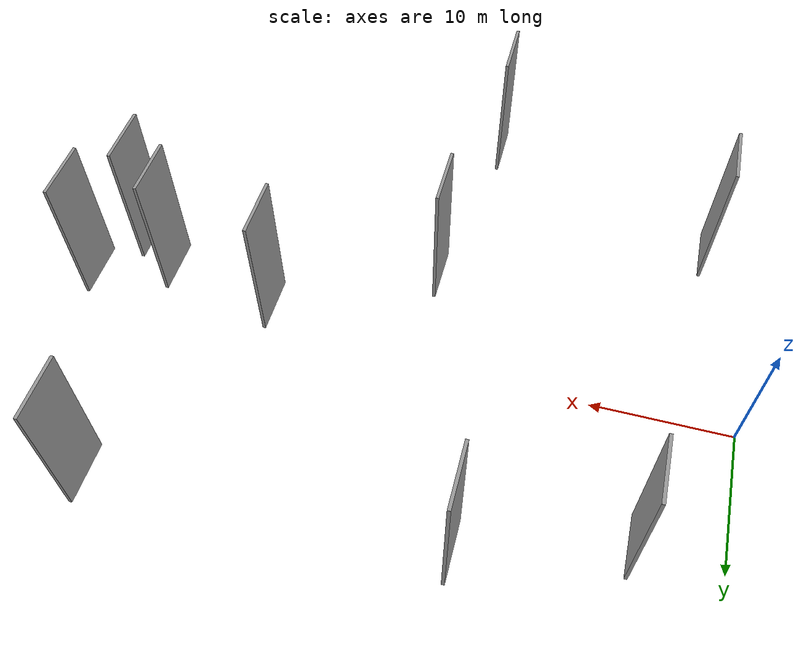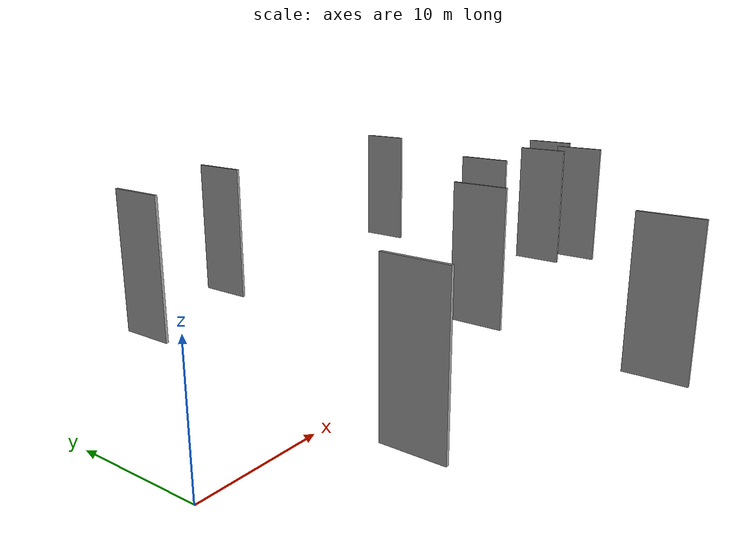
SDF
<sdf version="1.6">
 <world name="default">
  <scene>
   <sky><clouds><speed>12</speed></clouds></sky>
   <ambient>0.4 0.4 0.4 1</ambient>
   <background>0.7 0.7 0.7 1</background>
   <shadows>1</shadows>
  </scene>
  <gravity>0 0 -9.8066</gravity>
  <magnetic_field>6e-06 2.3e-05 -4.2e-05</magnetic_field>
  <physics default="0" name="default_physics" type="ode">
   <ode>
    <solver>
     <type>quick</type>
     <iters>10</iters>
     <sor>1.0</sor>
     <use_dynamic_moi_rescaling>0</use_dynamic_moi_rescaling>
    </solver>
    <constraints>
     <cfm>0</cfm>
     <erp>0.2</erp>
     <contact_max_correcting_vel>100</contact_max_correcting_vel>
     <contact_surface_layer>0.001</contact_surface_layer>
    </constraints>
   </ode>
   <max_step_size>0.004</max_step_size>
   <real_time_factor>1</real_time_factor>
   <real_time_update_rate>250</real_time_update_rate>
  </physics>
  <light name="sun" type="directional">
   <pose>0 0 10 0 0 0</pose>
   <diffuse>0.8 0.8 0.8 1</diffuse>
   <specular>0.2 0.2 0.2 1</specular>
   <attenuation>
    <range>1000</range>
    <constant>0.9</constant>
    <linear>0.01</linear>
    <quadratic>0.001</quadratic>
   </attenuation>
   <direction>-0.5 0.1 -0.9</direction>
  </light>
  <model name="grey_wall_1">
   <static>1</static>
   <pose>45.4345 0.9209 5.0 0.000000 0.000000 1.570796</pose>
   <link name="link">
    <pose>0 0 5.00 0 0 0</pose>
    <collision name="collision"><geometry><box><size>4.00 0.2 10.00</size></box></geometry></collision>
    <visual name="visual">
     <cast_shadows>0</cast_shadows>
     <geometry><box><size>4.00 0.2 10.00</size></box></geometry>
     <material>
      <script>
       <uri>model://grey_wall/materials/scripts</uri>
       <uri>model://grey_wall/materials/textures</uri>
       <name>vrc/grey_wall</name>
      </script>
     </material>
    </visual>
   </link>
  </model>
  <model name="grey_wall_2">
   <static>1</static>
   <pose>39.2784 15.6743 5.0 0.000000 0.000000 1.570796</pose>
   <link name="link">
    <pose>0 0 5.00 0 0 0</pose>
    <collision name="collision"><geometry><box><size>4.00 0.2 10.00</size></box></geometry></collision>
    <visual name="visual">
     <cast_shadows>0</cast_shadows>
     <geometry><box><size>4.00 0.2 10.00</size></box></geometry>
     <material>
      <script>
       <uri>model://grey_wall/materials/scripts</uri>
       <uri>model://grey_wall/materials/textures</uri>
       <name>vrc/grey_wall</name>
      </script>
     </material>
    </visual>
   </link>
  </model>
  <model name="grey_wall_3">
   <static>1</static>
   <pose>32.4803 0.7138 5.0 0.000000 0.000000 1.570796</pose>
   <link name="link">
    <pose>0 0 5.00 0 0 0</pose>
    <collision name="collision"><geometry><box><size>4.00 0.2 10.00</size></box></geometry></collision>
    <visual name="visual">
     <cast_shadows>0</cast_shadows>
     <geometry><box><size>4.00 0.2 10.00</size></box></geometry>
     <material>
      <script>
       <uri>model://grey_wall/materials/scripts</uri>
       <uri>model://grey_wall/materials/textures</uri>
       <name>vrc/grey_wall</name>
      </script>
     </material>
    </visual>
   </link>
  </model>
  <model name="grey_wall_4">
   <static>1</static>
   <pose>22.0041 -4.7944 5.0 0.000000 0.000000 1.570796</pose>
   <link name="link">
    <pose>0 0 5.00 0 0 0</pose>
    <collision name="collision"><geometry><box><size>4.00 0.2 10.00</size></box></geometry></collision>
    <visual name="visual">
     <cast_shadows>0</cast_shadows>
     <geometry><box><size>4.00 0.2 10.00</size></box></geometry>
     <material>
      <script>
       <uri>model://grey_wall/materials/scripts</uri>
       <uri>model://grey_wall/materials/textures</uri>
       <name>vrc/grey_wall</name>
      </script>
     </material>
    </visual>
   </link>
  </model>
  <model name="grey_wall_5">
   <static>1</static>
   <pose>4.3693 -11.3647 5.0 0.000000 0.000000 1.570796</pose>
   <link name="link">
    <pose>0 0 5.00 0 0 0</pose>
    <collision name="collision"><geometry><box><size>4.00 0.2 10.00</size></box></geometry></collision>
    <visual name="visual">
     <cast_shadows>0</cast_shadows>
     <geometry><box><size>4.00 0.2 10.00</size></box></geometry>
     <material>
      <script>
       <uri>model://grey_wall/materials/scripts</uri>
       <uri>model://grey_wall/materials/textures</uri>
       <name>vrc/grey_wall</name>
      </script>
     </material>
    </visual>
   </link>
  </model>
  <model name="grey_wall_6">
   <static>1</static>
   <pose>6.6681 11.8751 5.0 0.000000 0.000000 1.570796</pose>
   <link name="link">
    <pose>0 0 5.00 0 0 0</pose>
    <collision name="collision"><geometry><box><size>4.00 0.2 10.00</size></box></geometry></collision>
    <visual name="visual">
     <cast_shadows>0</cast_shadows>
     <geometry><box><size>4.00 0.2 10.00</size></box></geometry>
     <material>
      <script>
       <uri>model://grey_wall/materials/scripts</uri>
       <uri>model://grey_wall/materials/textures</uri>
       <name>vrc/grey_wall</name>
      </script>
     </material>
    </visual>
   </link>
  </model>
  <model name="grey_wall_7">
   <static>1</static>
   <pose>20.2776 -18.0082 5.0 0.000000 0.000000 1.570796</pose>
   <link name="link">
    <pose>0 0 5.00 0 0 0</pose>
    <collision name="collision"><geometry><box><size>4.00 0.2 10.00</size></box></geometry></collision>
    <visual name="visual">
     <cast_shadows>0</cast_shadows>
     <geometry><box><size>4.00 0.2 10.00</size></box></geometry>
     <material>
      <script>
       <uri>model://grey_wall/materials/scripts</uri>
       <uri>model://grey_wall/materials/textures</uri>
       <name>vrc/grey_wall</name>
      </script>
     </material>
    </visual>
   </link>
  </model>
  <model name="grey_wall_8">
   <static>1</static>
   <pose>16.6090 14.8488 5.0 0.000000 0.000000 1.570796</pose>
   <link name="link">
    <pose>0 0 5.00 0 0 0</pose>
    <collision name="collision"><geometry><box><size>4.00 0.2 10.00</size></box></geometry></collision>
    <visual name="visual">
     <cast_shadows>0</cast_shadows>
     <geometry><box><size>4.00 0.2 10.00</size></box></geometry>
     <material>
      <script>
       <uri>model://grey_wall/materials/scripts</uri>
       <uri>model://grey_wall/materials/textures</uri>
       <name>vrc/grey_wall</name>
      </script>
     </material>
    </visual>
   </link>
  </model>
  <model name="grey_wall_9">
   <static>1</static>
   <pose>43.0505 -2.9706 5.0 0.000000 0.000000 1.570796</pose>
   <link name="link">
    <pose>0 0 5.00 0 0 0</pose>
    <collision name="collision"><geometry><box><size>4.00 0.2 10.00</size></box></geometry></collision>
    <visual name="visual">
     <cast_shadows>0</cast_shadows>
     <geometry><box><size>4.00 0.2 10.00</size></box></geometry>
     <material>
      <script>
       <uri>model://grey_wall/materials/scripts</uri>
       <uri>model://grey_wall/materials/textures</uri>
       <name>vrc/grey_wall</name>
      </script>
     </material>
    </visual>
   </link>
  </model>
  <model name="grey_wall_10">
   <static>1</static>
   <pose>40.2447 -0.7743 5.0 0.000000 0.000000 1.570796</pose>
   <link name="link">
    <pose>0 0 5.00 0 0 0</pose>
    <collision name="collision"><geometry><box><size>4.00 0.2 10.00</size></box></geometry></collision>
    <visual name="visual">
     <cast_shadows>0</cast_shadows>
     <geometry><box><size>4.00 0.2 10.00</size></box></geometry>
     <material>
      <script>
       <uri>model://grey_wall/materials/scripts</uri>
       <uri>model://grey_wall/materials/textures</uri>
       <name>vrc/grey_wall</name>
      </script>
     </material>
    </visual>
   </link>
  </model>
 </world>
</sdf>
